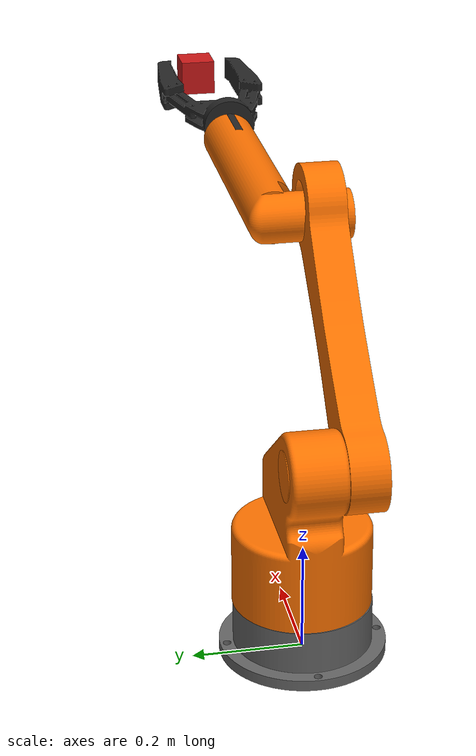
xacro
<?xml version="1.0"?>
<robot name="payload_arm" xmlns:xacro="http://www.ros.org/wiki/xacro">

  <xacro:arg name="payload_mass" default="0.001"/>
  <xacro:property name="payload_mass" value="$(arg payload_mass)"/>
  <xacro:arg name="controllers_file" default=""/>

  <link name="world"/>
  <material name="arm_orange"><color rgba="1.0 0.45 0.0 1.0"/></material>
  <material name="base_grey"><color rgba="0.4 0.4 0.4 1.0"/></material>
  <material name="gripper_dark"><color rgba="0.15 0.15 0.15 1.0"/></material>
  <material name="payload_red"><color rgba="0.8 0.1 0.1 1.0"/></material>

  <link name="base_link">
    <visual>
      <origin xyz="0 0 0" rpy="1.5708 0 0"/>
      <geometry><mesh filename="package://payload_arm/meshes/base.stl" scale="0.001 0.001 0.001"/></geometry>
      <material name="base_grey"/>
    </visual>
    <collision><geometry><cylinder radius="0.15" length="0.3"/></geometry></collision>
    <inertial>
      <mass value="55.69"/>
      <origin xyz="0 0.0726 0"/>
      <inertia ixx="0.3607" ixy="0" ixz="0" iyy="0.4026" iyz="0" izz="0.3607"/>
    </inertial>
  </link>

  <joint name="world_to_base" type="fixed">
    <parent link="world"/>
    <child link="base_link"/>
    <origin xyz="0 0 0" rpy="0 0 0"/>
  </joint>

  <link name="link1">
    <visual>
      <origin xyz="-0.000056 0.001659 0.02122" rpy="1.5708 0 0"/>
      <geometry><mesh filename="package://payload_arm/meshes/link1.stl" scale="0.001 0.001 0.001"/></geometry>
      <material name="arm_orange"/>
    </visual>
    <collision><geometry><cylinder radius="0.15" length="0.25"/></geometry></collision>
    <inertial>
      <mass value="74.13"/>
      <origin xyz="-0.00926 0.0460 0"/>
      <inertia ixx="0.8404" ixy="0.1125" ixz="0" iyy="0.6020" iyz="0" izz="0.9823"/>
    </inertial>
  </link>

  <joint name="joint1" type="revolute">
    <parent link="base_link"/>
    <child link="link1"/>
    <origin xyz="0 0 0.18" rpy="0 0 0"/>
    <axis xyz="0 0 1"/>
    <limit lower="-3.14" upper="3.14" velocity="1.0" effort="300.0"/>
  </joint>

  <link name="link2">
    <visual>
      <origin xyz="0.093463 -0.11721 0.13671" rpy="3.14159 0.7854 3.14159"/>
      <geometry><mesh filename="package://payload_arm/meshes/link2.stl" scale="0.001 0.001 0.001"/></geometry>
      <material name="arm_orange"/>
    </visual>
    <collision><origin xyz="0.325 0 0" rpy="0 1.5708 0"/><geometry><cylinder radius="0.05" length="0.65"/></geometry></collision>
    <inertial>
      <mass value="38.64"/>
      <origin xyz="0.0549 0.0460 0"/>
      <inertia ixx="0.0898" ixy="-0.0828" ixz="0" iyy="1.468" iyz="0" izz="1.477"/>
    </inertial>
  </link>

  <joint name="joint2" type="revolute">
    <parent link="link1"/>
    <child link="link2"/>
    <origin xyz="0 0 0.25" rpy="0 0 0"/>
    <axis xyz="0 1 0"/>
    <limit lower="-1.57" upper="1.57" velocity="1.0" effort="1200.0"/>
  </joint>

  <link name="link3">
    <visual>
      <origin xyz="-0.46165 0.000712 0.29" rpy="0 0 0"/>
      <geometry><mesh filename="package://payload_arm/meshes/link3.stl" scale="0.001 0.001 0.001"/></geometry>
      <material name="arm_orange"/>
    </visual>
    <collision><origin xyz="0.254 0 0" rpy="0 1.5708 0"/><geometry><cylinder radius="0.045" length="0.508"/></geometry></collision>
    <inertial>
      <mass value="33.60"/>
      <origin xyz="0.2625 -0.0131 0"/>
      <inertia ixx="0.0796" ixy="-0.0780" ixz="0" iyy="0.7627" iyz="0" izz="0.8002"/>
    </inertial>
  </link>

  <joint name="joint3" type="revolute">
    <parent link="link2"/>
    <child link="link3"/>
    <origin xyz="0.65 0 0" rpy="0 0 0"/>
    <axis xyz="0 1 0"/>
    <limit lower="-2.5" upper="2.5" velocity="1.0" effort="500.0"/>
  </joint>

  <link name="end_effector">
    <visual>
      <origin xyz="-1.78817 -0.70265 -0.63291" rpy="1.5708 0 1.5708"/>
      <geometry><mesh filename="package://payload_arm/meshes/gripper.stl" scale="0.001 0.001 0.001"/></geometry>
      <material name="gripper_dark"/>
    </visual>
    <collision><geometry><box size="0.15 0.1 0.22"/></geometry></collision>
    <inertial>
      <mass value="10.47"/>
      <origin xyz="0.1 0 0"/>
      <inertia ixx="0.222" ixy="0" ixz="0" iyy="0.241" iyz="0" izz="0.0239"/>
    </inertial>
  </link>

  <joint name="joint_ee" type="fixed">
    <parent link="link3"/>
    <child link="end_effector"/>
    <origin xyz="0.508 0 0" rpy="0 0 0"/>
  </joint>

  <link name="payload_link">
    <visual>
      <geometry><box size="0.07 0.07 0.07"/></geometry>
      <material name="payload_red"/>
    </visual>
    <collision><geometry><box size="0.07 0.07 0.07"/></geometry></collision>
    <inertial>
      <mass value="${payload_mass}"/>
      <inertia ixx="${payload_mass*0.07*0.07/6 + 0.000001}" ixy="0" ixz="0"
               iyy="${payload_mass*0.07*0.07/6 + 0.000001}" iyz="0"
               izz="${payload_mass*0.07*0.07/6 + 0.000001}"/>
    </inertial>
  </link>

  <joint name="joint_payload" type="fixed">
    <parent link="end_effector"/>
    <child link="payload_link"/>
    <origin xyz="0 0 0.30" rpy="0 0 0"/>
  </joint>

  <gazebo>
    <plugin filename="gz-sim-joint-position-controller-system"
            name="gz::sim::systems::JointPositionController">
      <joint_name>joint1</joint_name>
      <topic>/joint1/cmd_pos</topic>
      <p_gain>40000</p_gain>
      <i_gain>200</i_gain>
      <d_gain>3000</d_gain>
      <i_max>5000</i_max>
      <i_min>-5000</i_min>
    </plugin>
    <plugin filename="gz-sim-joint-position-controller-system"
            name="gz::sim::systems::JointPositionController">
      <joint_name>joint2</joint_name>
      <topic>/joint2/cmd_pos</topic>
      <p_gain>80000</p_gain>
      <i_gain>400</i_gain>
      <d_gain>6000</d_gain>
      <i_max>10000</i_max>
      <i_min>-10000</i_min>
    </plugin>
    <plugin filename="gz-sim-joint-position-controller-system"
            name="gz::sim::systems::JointPositionController">
      <joint_name>joint3</joint_name>
      <topic>/joint3/cmd_pos</topic>
      <p_gain>40000</p_gain>
      <i_gain>200</i_gain>
      <d_gain>3000</d_gain>
      <i_max>5000</i_max>
      <i_min>-5000</i_min>
    </plugin>
    <plugin filename="gz-sim-joint-state-publisher-system"
            name="gz::sim::systems::JointStatePublisher">
    </plugin>
  </gazebo>

</robot>
